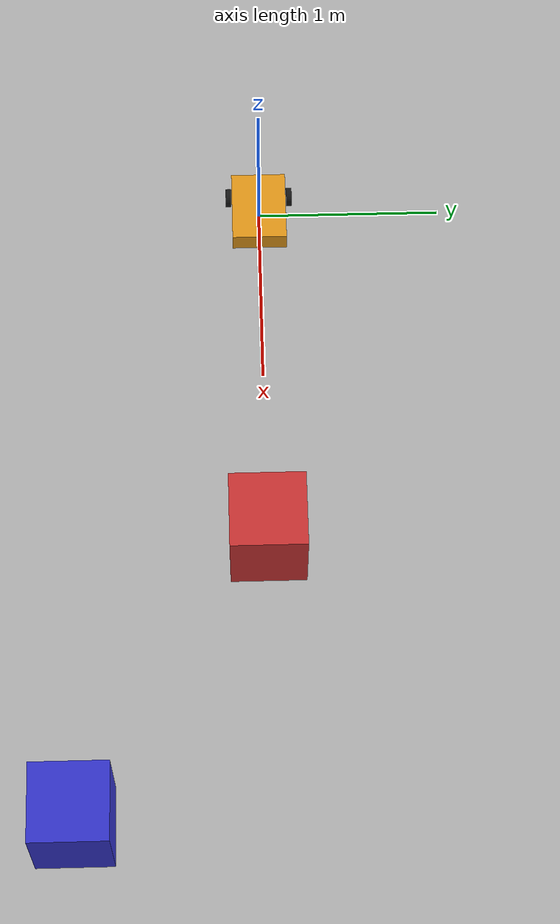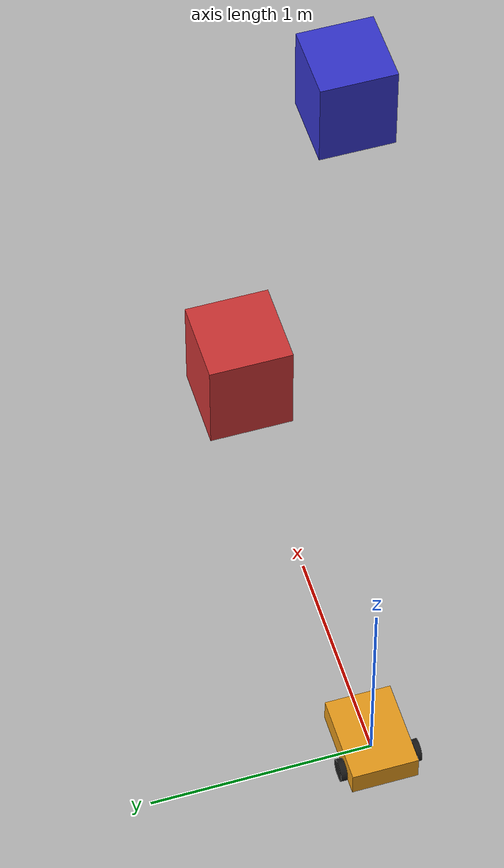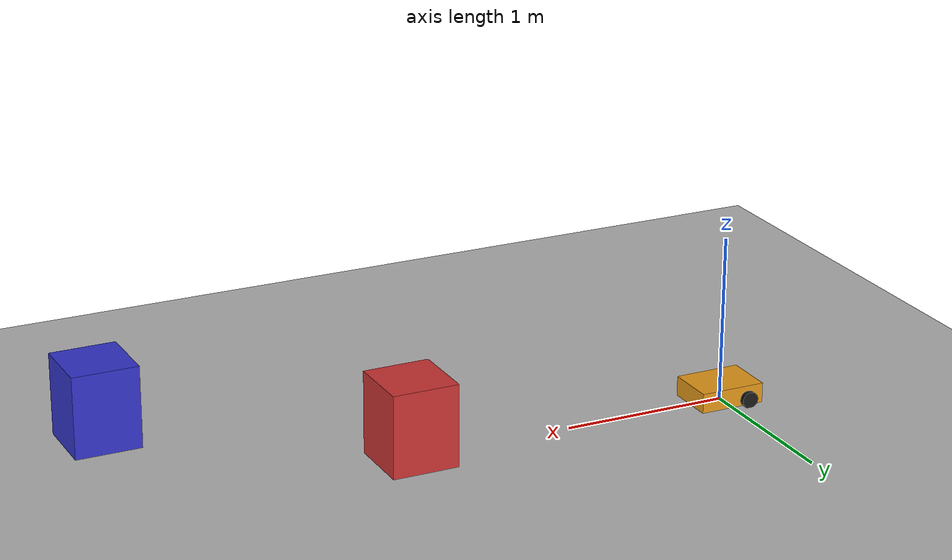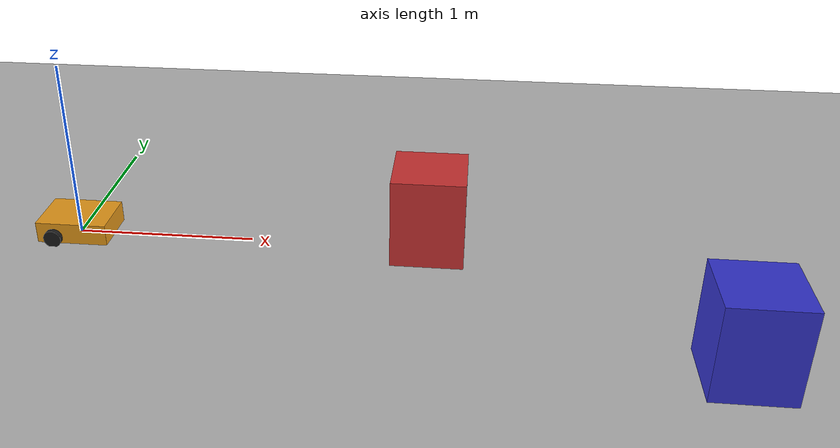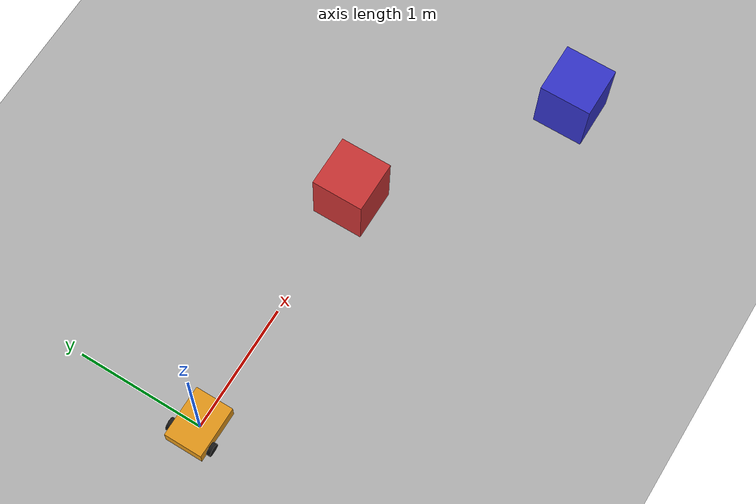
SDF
<?xml version="1.0" ?>
<sdf version="1.8">
  <world name="day8_world">

    <physics name="1ms" type="ignored">
      <max_step_size>0.001</max_step_size>
      <real_time_factor>1.0</real_time_factor>
    </physics>

    <plugin filename="gz-sim-physics-system" name="gz::sim::systems::Physics">
    </plugin>
    <plugin filename="gz-sim-sensors-system" name="gz::sim::systems::Sensors">
      <render_engine>ogre2</render_engine>
    </plugin>
    <plugin filename="gz-sim-imu-system" name="gz::sim::systems::Imu">
    </plugin>
    <plugin filename="gz-sim-scene-broadcaster-system" name="gz::sim::systems::SceneBroadcaster">
    </plugin>
    <plugin filename="gz-sim-user-commands-system" name="gz::sim::systems::UserCommands">
    </plugin>

    <light type="directional" name="sun">
      <cast_shadows>true</cast_shadows>
      <pose>0 0 10 0 0 0</pose>
      <diffuse>0.8 0.8 0.8 1</diffuse>
      <specular>0.2 0.2 0.2 1</specular>
      <direction>-0.5 0.1 -0.9</direction>
    </light>

    <!-- 바닥 : 외부 모델 저장소(Fuel) 없이도 되도록 직접 정의 -->
    <model name="ground_plane">
      <static>true</static>
      <link name="link">
        <collision name="collision">
          <geometry>
            <plane>
              <normal>0 0 1</normal>
              <size>100 100</size>
            </plane>
          </geometry>
        </collision>
        <visual name="visual">
          <geometry>
            <plane>
              <normal>0 0 1</normal>
              <size>100 100</size>
            </plane>
          </geometry>
          <material>
            <ambient>0.7 0.7 0.7 1</ambient>
            <diffuse>0.7 0.7 0.7 1</diffuse>
          </material>
        </visual>
      </link>
    </model>

    <!-- 정면 장애물 — 회피 실습용 -->
    <model name="obstacle_box_1">
      <static>true</static>
      <pose>2.0 0 0.25 0 0 0</pose>
      <link name="link">
        <collision name="collision">
          <geometry><box><size>0.4 0.4 0.5</size></box></geometry>
        </collision>
        <visual name="visual">
          <geometry><box><size>0.4 0.4 0.5</size></box></geometry>
          <material>
            <ambient>0.8 0.2 0.2 1</ambient>
            <diffuse>0.8 0.2 0.2 1</diffuse>
          </material>
        </visual>
      </link>
    </model>

    <model name="obstacle_box_2">
      <static>true</static>
      <pose>3.5 -1.0 0.25 0 0 0</pose>
      <link name="link">
        <collision name="collision">
          <geometry><box><size>0.4 0.4 0.5</size></box></geometry>
        </collision>
        <visual name="visual">
          <geometry><box><size>0.4 0.4 0.5</size></box></geometry>
          <material>
            <ambient>0.2 0.2 0.8 1</ambient>
            <diffuse>0.2 0.2 0.8 1</diffuse>
          </material>
        </visual>
      </link>
    </model>

    <!-- ================= 8일차 실습용 로봇 ================= -->
    <model name="day8_robot">
      <pose>0 0 0.06 0 0 0</pose>

      <link name="base_link">
        <inertial>
          <mass>5.0</mass>
          <inertia>
            <ixx>0.05</ixx><ixy>0</ixy><ixz>0</ixz>
            <iyy>0.08</iyy><iyz>0</iyz>
            <izz>0.10</izz>
          </inertia>
        </inertial>
        <collision name="collision">
          <geometry><box><size>0.40 0.30 0.12</size></box></geometry>
        </collision>
        <visual name="visual">
          <geometry><box><size>0.40 0.30 0.12</size></box></geometry>
          <material>
            <ambient>0.9 0.6 0.1 1</ambient>
            <diffuse>0.9 0.6 0.1 1</diffuse>
          </material>
        </visual>

        <!-- LiDAR : /scan -->
        <sensor name="lidar" type="gpu_lidar">
          <pose>0.18 0 0.12 0 0 0</pose>
          <topic>/scan</topic>
          <update_rate>10</update_rate>
          <always_on>true</always_on>
          <visualize>false</visualize>
          <lidar>
            <scan>
              <horizontal>
                <samples>360</samples>
                <min_angle>-3.14159</min_angle>
                <max_angle>3.14159</max_angle>
              </horizontal>
            </scan>
            <range>
              <min>0.08</min>
              <max>10.0</max>
              <resolution>0.01</resolution>
            </range>
          </lidar>
        </sensor>

        <!-- Camera : /camera/image -->
        <sensor name="camera" type="camera">
          <pose>0.20 0 0.10 0 0 0</pose>
          <topic>/camera/image</topic>
          <update_rate>15</update_rate>
          <always_on>true</always_on>
          <visualize>false</visualize>
          <camera>
            <horizontal_fov>1.047</horizontal_fov>
            <image>
              <width>640</width>
              <height>480</height>
              <format>R8G8B8</format>
            </image>
            <clip>
              <near>0.05</near>
              <far>20.0</far>
            </clip>
          </camera>
        </sensor>

        <!-- IMU : /imu -->
        <sensor name="imu_sensor" type="imu">
          <pose>0 0 0.06 0 0 0</pose>
          <topic>/imu</topic>
          <update_rate>50</update_rate>
          <always_on>true</always_on>
          <imu/>
        </sensor>
      </link>

      <link name="left_wheel_joint">
        <pose relative_to="base_link">-0.10 0.17 -0.02 -1.5708 0 0</pose>
        <inertial>
          <mass>0.3</mass>
          <inertia><ixx>0.001</ixx><ixy>0</ixy><ixz>0</ixz><iyy>0.001</iyy><iyz>0</iyz><izz>0.001</izz></inertia>
        </inertial>
        <collision name="collision">
          <geometry><cylinder><radius>0.05</radius><length>0.03</length></cylinder></geometry>
        </collision>
        <visual name="visual">
          <geometry><cylinder><radius>0.05</radius><length>0.03</length></cylinder></geometry>
          <material><ambient>0.1 0.1 0.1 1</ambient><diffuse>0.1 0.1 0.1 1</diffuse></material>
        </visual>
      </link>

      <link name="right_wheel_joint">
        <pose relative_to="base_link">-0.10 -0.17 -0.02 -1.5708 0 0</pose>
        <inertial>
          <mass>0.3</mass>
          <inertia><ixx>0.001</ixx><ixy>0</ixy><ixz>0</ixz><iyy>0.001</iyy><iyz>0</iyz><izz>0.001</izz></inertia>
        </inertial>
        <collision name="collision">
          <geometry><cylinder><radius>0.05</radius><length>0.03</length></cylinder></geometry>
        </collision>
        <visual name="visual">
          <geometry><cylinder><radius>0.05</radius><length>0.03</length></cylinder></geometry>
          <material><ambient>0.1 0.1 0.1 1</ambient><diffuse>0.1 0.1 0.1 1</diffuse></material>
        </visual>
      </link>

      <!-- 캐스터(뒷바퀴 역할) : 균형용 구 -->
      <link name="caster">
        <pose relative_to="base_link">0.15 0 -0.04 0 0 0</pose>
        <inertial>
          <mass>0.1</mass>
          <inertia><ixx>0.0001</ixx><ixy>0</ixy><ixz>0</ixz><iyy>0.0001</iyy><iyz>0</iyz><izz>0.0001</izz></inertia>
        </inertial>
        <collision name="collision">
          <geometry><sphere><radius>0.02</radius></sphere></geometry>
        </collision>
        <visual name="visual">
          <geometry><sphere><radius>0.02</radius></sphere></geometry>
        </visual>
      </link>

      <joint name="left_wheel_hinge" type="revolute">
        <parent>base_link</parent>
        <child>left_wheel_joint</child>
        <axis><xyz>0 0 1</xyz></axis>
      </joint>

      <joint name="right_wheel_hinge" type="revolute">
        <parent>base_link</parent>
        <child>right_wheel_joint</child>
        <axis><xyz>0 0 1</xyz></axis>
      </joint>

      <joint name="caster_joint" type="fixed">
        <parent>base_link</parent>
        <child>caster</child>
      </joint>

      <!-- 차동구동 제어 : /cmd_vel 구독, /odom 발행 -->
      <plugin filename="gz-sim-diff-drive-system" name="gz::sim::systems::DiffDrive">
        <left_joint>left_wheel_hinge</left_joint>
        <right_joint>right_wheel_hinge</right_joint>
        <wheel_separation>0.34</wheel_separation>
        <wheel_radius>0.05</wheel_radius>
        <topic>/cmd_vel</topic>
        <odom_topic>/odom</odom_topic>
        <frame_id>odom</frame_id>
        <child_frame_id>base_link</child_frame_id>
      </plugin>

    </model>

  </world>
</sdf>
